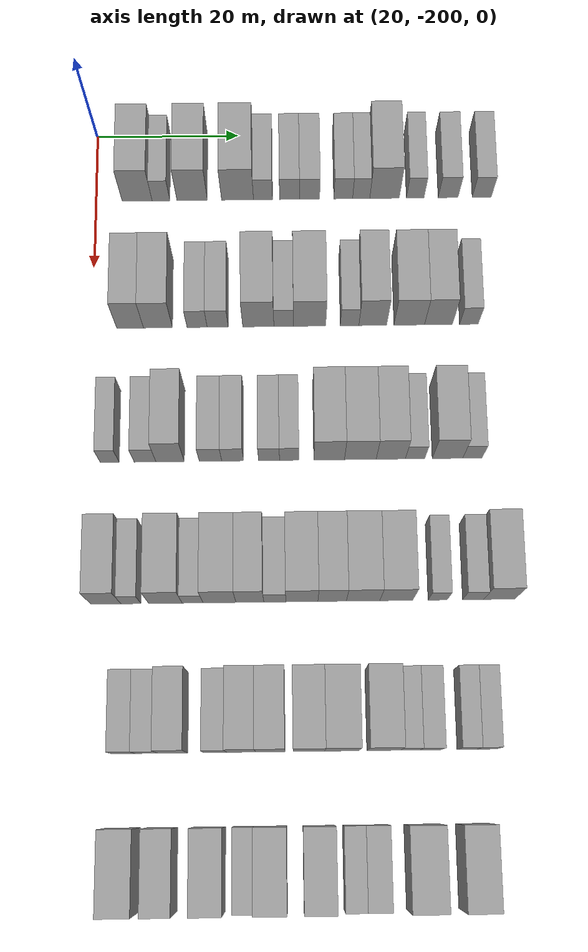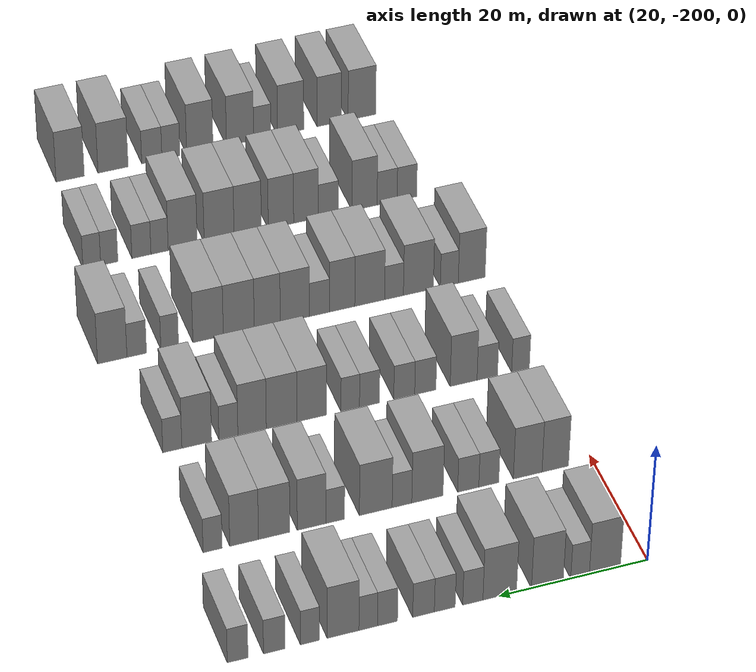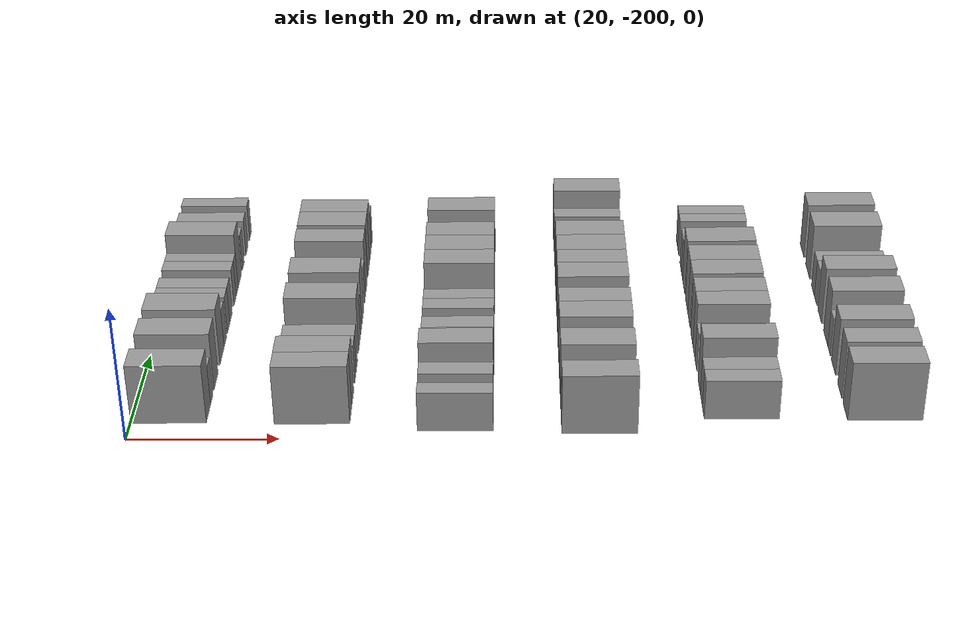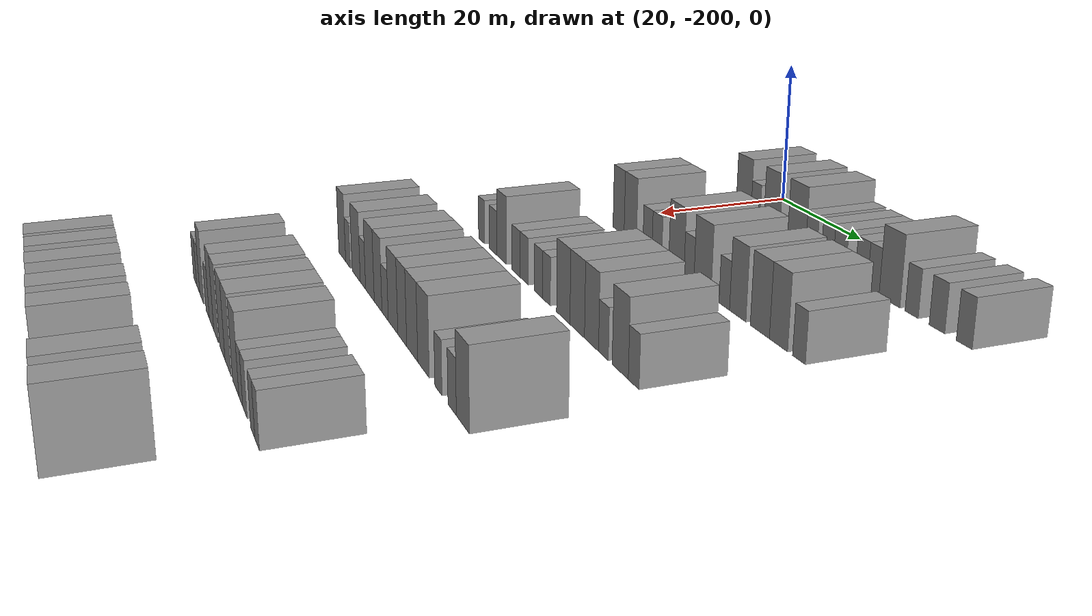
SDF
<sdf version="1.6">
 <world name="default">
  <model name="building_37">
   <static>1</static>
   <pose>25.0000 -194.2032 0 0.000000 0.000000 0.000000</pose>
   <link name="link">
    <pose>0 0 4.50 0 0 0</pose>
    <collision name="collision"><geometry><box><size>10.0000 4.2087 9.0000</size></box></geometry></collision>
    <visual name="visual">
     <cast_shadows>0</cast_shadows>
     <geometry><box><size>10.0000 4.2087 9.0000</size></box></geometry>
     <material>
      <script>
       <uri>model://grey_wall/materials/scripts</uri>
       <uri>model://grey_wall/materials/textures</uri>
       <name>vrc/grey_wall</name>
      </script>
     </material>
    </visual>
   </link>
  </model>
  <model name="building_38">
   <static>1</static>
   <pose>25.0000 -190.8479 0 0.000000 0.000000 0.000000</pose>
   <link name="link">
    <pose>0 0 3.00 0 0 0</pose>
    <collision name="collision"><geometry><box><size>10.0000 2.5019 6.0000</size></box></geometry></collision>
    <visual name="visual">
     <cast_shadows>0</cast_shadows>
     <geometry><box><size>10.0000 2.5019 6.0000</size></box></geometry>
     <material>
      <script>
       <uri>model://grey_wall/materials/scripts</uri>
       <uri>model://grey_wall/materials/textures</uri>
       <name>vrc/grey_wall</name>
      </script>
     </material>
    </visual>
   </link>
  </model>
  <model name="building_39">
   <static>1</static>
   <pose>25.0000 -186.4623 0 0.000000 0.000000 0.000000</pose>
   <link name="link">
    <pose>0 0 4.50 0 0 0</pose>
    <collision name="collision"><geometry><box><size>10.0000 4.2692 9.0000</size></box></geometry></collision>
    <visual name="visual">
     <cast_shadows>0</cast_shadows>
     <geometry><box><size>10.0000 4.2692 9.0000</size></box></geometry>
     <material>
      <script>
       <uri>model://grey_wall/materials/scripts</uri>
       <uri>model://grey_wall/materials/textures</uri>
       <name>vrc/grey_wall</name>
      </script>
     </material>
    </visual>
   </link>
  </model>
  <model name="building_40">
   <static>1</static>
   <pose>25.0000 -180.0829 0 0.000000 0.000000 0.000000</pose>
   <link name="link">
    <pose>0 0 4.50 0 0 0</pose>
    <collision name="collision"><geometry><box><size>10.0000 4.4897 9.0000</size></box></geometry></collision>
    <visual name="visual">
     <cast_shadows>0</cast_shadows>
     <geometry><box><size>10.0000 4.4897 9.0000</size></box></geometry>
     <material>
      <script>
       <uri>model://grey_wall/materials/scripts</uri>
       <uri>model://grey_wall/materials/textures</uri>
       <name>vrc/grey_wall</name>
      </script>
     </material>
    </visual>
   </link>
  </model>
  <model name="building_41">
   <static>1</static>
   <pose>25.0000 -176.4945 0 0.000000 0.000000 0.000000</pose>
   <link name="link">
    <pose>0 0 3.00 0 0 0</pose>
    <collision name="collision"><geometry><box><size>10.0000 2.6871 6.0000</size></box></geometry></collision>
    <visual name="visual">
     <cast_shadows>0</cast_shadows>
     <geometry><box><size>10.0000 2.6871 6.0000</size></box></geometry>
     <material>
      <script>
       <uri>model://grey_wall/materials/scripts</uri>
       <uri>model://grey_wall/materials/textures</uri>
       <name>vrc/grey_wall</name>
      </script>
     </material>
    </visual>
   </link>
  </model>
  <model name="building_42">
   <static>1</static>
   <pose>25.0000 -172.7683 0 0.000000 0.000000 0.000000</pose>
   <link name="link">
    <pose>0 0 3.00 0 0 0</pose>
    <collision name="collision"><geometry><box><size>10.0000 2.7653 6.0000</size></box></geometry></collision>
    <visual name="visual">
     <cast_shadows>0</cast_shadows>
     <geometry><box><size>10.0000 2.7653 6.0000</size></box></geometry>
     <material>
      <script>
       <uri>model://grey_wall/materials/scripts</uri>
       <uri>model://grey_wall/materials/textures</uri>
       <name>vrc/grey_wall</name>
      </script>
     </material>
    </visual>
   </link>
  </model>
  <model name="building_43">
   <static>1</static>
   <pose>25.0000 -169.9595 0 0.000000 0.000000 0.000000</pose>
   <link name="link">
    <pose>0 0 3.00 0 0 0</pose>
    <collision name="collision"><geometry><box><size>10.0000 2.8523 6.0000</size></box></geometry></collision>
    <visual name="visual">
     <cast_shadows>0</cast_shadows>
     <geometry><box><size>10.0000 2.8523 6.0000</size></box></geometry>
     <material>
      <script>
       <uri>model://grey_wall/materials/scripts</uri>
       <uri>model://grey_wall/materials/textures</uri>
       <name>vrc/grey_wall</name>
      </script>
     </material>
    </visual>
   </link>
  </model>
  <model name="building_44">
   <static>1</static>
   <pose>25.0000 -165.2083 0 0.000000 0.000000 0.000000</pose>
   <link name="link">
    <pose>0 0 3.00 0 0 0</pose>
    <collision name="collision"><geometry><box><size>10.0000 2.6502 6.0000</size></box></geometry></collision>
    <visual name="visual">
     <cast_shadows>0</cast_shadows>
     <geometry><box><size>10.0000 2.6502 6.0000</size></box></geometry>
     <material>
      <script>
       <uri>model://grey_wall/materials/scripts</uri>
       <uri>model://grey_wall/materials/textures</uri>
       <name>vrc/grey_wall</name>
      </script>
     </material>
    </visual>
   </link>
  </model>
  <model name="building_45">
   <static>1</static>
   <pose>25.0000 -162.6723 0 0.000000 0.000000 0.000000</pose>
   <link name="link">
    <pose>0 0 3.00 0 0 0</pose>
    <collision name="collision"><geometry><box><size>10.0000 2.4218 6.0000</size></box></geometry></collision>
    <visual name="visual">
     <cast_shadows>0</cast_shadows>
     <geometry><box><size>10.0000 2.4218 6.0000</size></box></geometry>
     <material>
      <script>
       <uri>model://grey_wall/materials/scripts</uri>
       <uri>model://grey_wall/materials/textures</uri>
       <name>vrc/grey_wall</name>
      </script>
     </material>
    </visual>
   </link>
  </model>
  <model name="building_46">
   <static>1</static>
   <pose>25.0000 -159.3870 0 0.000000 0.000000 0.000000</pose>
   <link name="link">
    <pose>0 0 4.50 0 0 0</pose>
    <collision name="collision"><geometry><box><size>10.0000 4.1486 9.0000</size></box></geometry></collision>
    <visual name="visual">
     <cast_shadows>0</cast_shadows>
     <geometry><box><size>10.0000 4.1486 9.0000</size></box></geometry>
     <material>
      <script>
       <uri>model://grey_wall/materials/scripts</uri>
       <uri>model://grey_wall/materials/textures</uri>
       <name>vrc/grey_wall</name>
      </script>
     </material>
    </visual>
   </link>
  </model>
  <model name="building_47">
   <static>1</static>
   <pose>25.0000 -155.0709 0 0.000000 0.000000 0.000000</pose>
   <link name="link">
    <pose>0 0 3.00 0 0 0</pose>
    <collision name="collision"><geometry><box><size>10.0000 2.4835 6.0000</size></box></geometry></collision>
    <visual name="visual">
     <cast_shadows>0</cast_shadows>
     <geometry><box><size>10.0000 2.4835 6.0000</size></box></geometry>
     <material>
      <script>
       <uri>model://grey_wall/materials/scripts</uri>
       <uri>model://grey_wall/materials/textures</uri>
       <name>vrc/grey_wall</name>
      </script>
     </material>
    </visual>
   </link>
  </model>
  <model name="building_48">
   <static>1</static>
   <pose>25.0000 -150.4321 0 0.000000 0.000000 0.000000</pose>
   <link name="link">
    <pose>0 0 3.00 0 0 0</pose>
    <collision name="collision"><geometry><box><size>10.0000 2.7941 6.0000</size></box></geometry></collision>
    <visual name="visual">
     <cast_shadows>0</cast_shadows>
     <geometry><box><size>10.0000 2.7941 6.0000</size></box></geometry>
     <material>
      <script>
       <uri>model://grey_wall/materials/scripts</uri>
       <uri>model://grey_wall/materials/textures</uri>
       <name>vrc/grey_wall</name>
      </script>
     </material>
    </visual>
   </link>
  </model>
  <model name="building_49">
   <static>1</static>
   <pose>25.0000 -145.6958 0 0.000000 0.000000 0.000000</pose>
   <link name="link">
    <pose>0 0 3.00 0 0 0</pose>
    <collision name="collision"><geometry><box><size>10.0000 2.6785 6.0000</size></box></geometry></collision>
    <visual name="visual">
     <cast_shadows>0</cast_shadows>
     <geometry><box><size>10.0000 2.6785 6.0000</size></box></geometry>
     <material>
      <script>
       <uri>model://grey_wall/materials/scripts</uri>
       <uri>model://grey_wall/materials/textures</uri>
       <name>vrc/grey_wall</name>
      </script>
     </material>
    </visual>
   </link>
  </model>
  <model name="building_208">
   <static>1</static>
   <pose>44.0000 -194.8047 0 0.000000 0.000000 0.000000</pose>
   <link name="link">
    <pose>0 0 4.50 0 0 0</pose>
    <collision name="collision"><geometry><box><size>10.0000 3.6692 9.0000</size></box></geometry></collision>
    <visual name="visual">
     <cast_shadows>0</cast_shadows>
     <geometry><box><size>10.0000 3.6692 9.0000</size></box></geometry>
     <material>
      <script>
       <uri>model://grey_wall/materials/scripts</uri>
       <uri>model://grey_wall/materials/textures</uri>
       <name>vrc/grey_wall</name>
      </script>
     </material>
    </visual>
   </link>
  </model>
  <model name="building_209">
   <static>1</static>
   <pose>44.0000 -190.9910 0 0.000000 0.000000 0.000000</pose>
   <link name="link">
    <pose>0 0 4.50 0 0 0</pose>
    <collision name="collision"><geometry><box><size>10.0000 3.9582 9.0000</size></box></geometry></collision>
    <visual name="visual">
     <cast_shadows>0</cast_shadows>
     <geometry><box><size>10.0000 3.9582 9.0000</size></box></geometry>
     <material>
      <script>
       <uri>model://grey_wall/materials/scripts</uri>
       <uri>model://grey_wall/materials/textures</uri>
       <name>vrc/grey_wall</name>
      </script>
     </material>
    </visual>
   </link>
  </model>
  <model name="building_210">
   <static>1</static>
   <pose>44.0000 -185.6369 0 0.000000 0.000000 0.000000</pose>
   <link name="link">
    <pose>0 0 3.00 0 0 0</pose>
    <collision name="collision"><geometry><box><size>10.0000 2.7499 6.0000</size></box></geometry></collision>
    <visual name="visual">
     <cast_shadows>0</cast_shadows>
     <geometry><box><size>10.0000 2.7499 6.0000</size></box></geometry>
     <material>
      <script>
       <uri>model://grey_wall/materials/scripts</uri>
       <uri>model://grey_wall/materials/textures</uri>
       <name>vrc/grey_wall</name>
      </script>
     </material>
    </visual>
   </link>
  </model>
  <model name="building_211">
   <static>1</static>
   <pose>44.0000 -182.8170 0 0.000000 0.000000 0.000000</pose>
   <link name="link">
    <pose>0 0 3.00 0 0 0</pose>
    <collision name="collision"><geometry><box><size>10.0000 2.8900 6.0000</size></box></geometry></collision>
    <visual name="visual">
     <cast_shadows>0</cast_shadows>
     <geometry><box><size>10.0000 2.8900 6.0000</size></box></geometry>
     <material>
      <script>
       <uri>model://grey_wall/materials/scripts</uri>
       <uri>model://grey_wall/materials/textures</uri>
       <name>vrc/grey_wall</name>
      </script>
     </material>
    </visual>
   </link>
  </model>
  <model name="building_212">
   <static>1</static>
   <pose>44.0000 -177.2403 0 0.000000 0.000000 0.000000</pose>
   <link name="link">
    <pose>0 0 4.50 0 0 0</pose>
    <collision name="collision"><geometry><box><size>10.0000 4.2633 9.0000</size></box></geometry></collision>
    <visual name="visual">
     <cast_shadows>0</cast_shadows>
     <geometry><box><size>10.0000 4.2633 9.0000</size></box></geometry>
     <material>
      <script>
       <uri>model://grey_wall/materials/scripts</uri>
       <uri>model://grey_wall/materials/textures</uri>
       <name>vrc/grey_wall</name>
      </script>
     </material>
    </visual>
   </link>
  </model>
  <model name="building_213">
   <static>1</static>
   <pose>44.0000 -173.7747 0 0.000000 0.000000 0.000000</pose>
   <link name="link">
    <pose>0 0 3.00 0 0 0</pose>
    <collision name="collision"><geometry><box><size>10.0000 2.6679 6.0000</size></box></geometry></collision>
    <visual name="visual">
     <cast_shadows>0</cast_shadows>
     <geometry><box><size>10.0000 2.6679 6.0000</size></box></geometry>
     <material>
      <script>
       <uri>model://grey_wall/materials/scripts</uri>
       <uri>model://grey_wall/materials/textures</uri>
       <name>vrc/grey_wall</name>
      </script>
     </material>
    </visual>
   </link>
  </model>
  <model name="building_214">
   <static>1</static>
   <pose>44.0000 -170.2261 0 0.000000 0.000000 0.000000</pose>
   <link name="link">
    <pose>0 0 4.50 0 0 0</pose>
    <collision name="collision"><geometry><box><size>10.0000 4.4292 9.0000</size></box></geometry></collision>
    <visual name="visual">
     <cast_shadows>0</cast_shadows>
     <geometry><box><size>10.0000 4.4292 9.0000</size></box></geometry>
     <material>
      <script>
       <uri>model://grey_wall/materials/scripts</uri>
       <uri>model://grey_wall/materials/textures</uri>
       <name>vrc/grey_wall</name>
      </script>
     </material>
    </visual>
   </link>
  </model>
  <model name="building_215">
   <static>1</static>
   <pose>44.0000 -164.7394 0 0.000000 0.000000 0.000000</pose>
   <link name="link">
    <pose>0 0 3.00 0 0 0</pose>
    <collision name="collision"><geometry><box><size>10.0000 2.5443 6.0000</size></box></geometry></collision>
    <visual name="visual">
     <cast_shadows>0</cast_shadows>
     <geometry><box><size>10.0000 2.5443 6.0000</size></box></geometry>
     <material>
      <script>
       <uri>model://grey_wall/materials/scripts</uri>
       <uri>model://grey_wall/materials/textures</uri>
       <name>vrc/grey_wall</name>
      </script>
     </material>
    </visual>
   </link>
  </model>
  <model name="building_216">
   <static>1</static>
   <pose>44.0000 -161.5590 0 0.000000 0.000000 0.000000</pose>
   <link name="link">
    <pose>0 0 4.50 0 0 0</pose>
    <collision name="collision"><geometry><box><size>10.0000 3.8164 9.0000</size></box></geometry></collision>
    <visual name="visual">
     <cast_shadows>0</cast_shadows>
     <geometry><box><size>10.0000 3.8164 9.0000</size></box></geometry>
     <material>
      <script>
       <uri>model://grey_wall/materials/scripts</uri>
       <uri>model://grey_wall/materials/textures</uri>
       <name>vrc/grey_wall</name>
      </script>
     </material>
    </visual>
   </link>
  </model>
  <model name="building_217">
   <static>1</static>
   <pose>44.0000 -156.5576 0 0.000000 0.000000 0.000000</pose>
   <link name="link">
    <pose>0 0 4.50 0 0 0</pose>
    <collision name="collision"><geometry><box><size>10.0000 4.1865 9.0000</size></box></geometry></collision>
    <visual name="visual">
     <cast_shadows>0</cast_shadows>
     <geometry><box><size>10.0000 4.1865 9.0000</size></box></geometry>
     <material>
      <script>
       <uri>model://grey_wall/materials/scripts</uri>
       <uri>model://grey_wall/materials/textures</uri>
       <name>vrc/grey_wall</name>
      </script>
     </material>
    </visual>
   </link>
  </model>
  <model name="building_218">
   <static>1</static>
   <pose>44.0000 -152.5551 0 0.000000 0.000000 0.000000</pose>
   <link name="link">
    <pose>0 0 4.50 0 0 0</pose>
    <collision name="collision"><geometry><box><size>10.0000 3.8185 9.0000</size></box></geometry></collision>
    <visual name="visual">
     <cast_shadows>0</cast_shadows>
     <geometry><box><size>10.0000 3.8185 9.0000</size></box></geometry>
     <material>
      <script>
       <uri>model://grey_wall/materials/scripts</uri>
       <uri>model://grey_wall/materials/textures</uri>
       <name>vrc/grey_wall</name>
      </script>
     </material>
    </visual>
   </link>
  </model>
  <model name="building_219">
   <static>1</static>
   <pose>44.0000 -148.3747 0 0.000000 0.000000 0.000000</pose>
   <link name="link">
    <pose>0 0 3.00 0 0 0</pose>
    <collision name="collision"><geometry><box><size>10.0000 2.5425 6.0000</size></box></geometry></collision>
    <visual name="visual">
     <cast_shadows>0</cast_shadows>
     <geometry><box><size>10.0000 2.5425 6.0000</size></box></geometry>
     <material>
      <script>
       <uri>model://grey_wall/materials/scripts</uri>
       <uri>model://grey_wall/materials/textures</uri>
       <name>vrc/grey_wall</name>
      </script>
     </material>
    </visual>
   </link>
  </model>
  <model name="building_387">
   <static>1</static>
   <pose>63.0000 -197.1488 0 0.000000 0.000000 0.000000</pose>
   <link name="link">
    <pose>0 0 3.00 0 0 0</pose>
    <collision name="collision"><geometry><box><size>10.0000 2.5104 6.0000</size></box></geometry></collision>
    <visual name="visual">
     <cast_shadows>0</cast_shadows>
     <geometry><box><size>10.0000 2.5104 6.0000</size></box></geometry>
     <material>
      <script>
       <uri>model://grey_wall/materials/scripts</uri>
       <uri>model://grey_wall/materials/textures</uri>
       <name>vrc/grey_wall</name>
      </script>
     </material>
    </visual>
   </link>
  </model>
  <model name="building_388">
   <static>1</static>
   <pose>63.0000 -192.4408 0 0.000000 0.000000 0.000000</pose>
   <link name="link">
    <pose>0 0 3.00 0 0 0</pose>
    <collision name="collision"><geometry><box><size>10.0000 2.9055 6.0000</size></box></geometry></collision>
    <visual name="visual">
     <cast_shadows>0</cast_shadows>
     <geometry><box><size>10.0000 2.9055 6.0000</size></box></geometry>
     <material>
      <script>
       <uri>model://grey_wall/materials/scripts</uri>
       <uri>model://grey_wall/materials/textures</uri>
       <name>vrc/grey_wall</name>
      </script>
     </material>
    </visual>
   </link>
  </model>
  <model name="building_389">
   <static>1</static>
   <pose>63.0000 -189.0952 0 0.000000 0.000000 0.000000</pose>
   <link name="link">
    <pose>0 0 4.50 0 0 0</pose>
    <collision name="collision"><geometry><box><size>10.0000 3.7857 9.0000</size></box></geometry></collision>
    <visual name="visual">
     <cast_shadows>0</cast_shadows>
     <geometry><box><size>10.0000 3.7857 9.0000</size></box></geometry>
     <material>
      <script>
       <uri>model://grey_wall/materials/scripts</uri>
       <uri>model://grey_wall/materials/textures</uri>
       <name>vrc/grey_wall</name>
      </script>
     </material>
    </visual>
   </link>
  </model>
  <model name="building_390">
   <static>1</static>
   <pose>63.0000 -183.7101 0 0.000000 0.000000 0.000000</pose>
   <link name="link">
    <pose>0 0 3.00 0 0 0</pose>
    <collision name="collision"><geometry><box><size>10.0000 2.9845 6.0000</size></box></geometry></collision>
    <visual name="visual">
     <cast_shadows>0</cast_shadows>
     <geometry><box><size>10.0000 2.9845 6.0000</size></box></geometry>
     <material>
      <script>
       <uri>model://grey_wall/materials/scripts</uri>
       <uri>model://grey_wall/materials/textures</uri>
       <name>vrc/grey_wall</name>
      </script>
     </material>
    </visual>
   </link>
  </model>
  <model name="building_391">
   <static>1</static>
   <pose>63.0000 -180.7538 0 0.000000 0.000000 0.000000</pose>
   <link name="link">
    <pose>0 0 3.00 0 0 0</pose>
    <collision name="collision"><geometry><box><size>10.0000 2.9281 6.0000</size></box></geometry></collision>
    <visual name="visual">
     <cast_shadows>0</cast_shadows>
     <geometry><box><size>10.0000 2.9281 6.0000</size></box></geometry>
     <material>
      <script>
       <uri>model://grey_wall/materials/scripts</uri>
       <uri>model://grey_wall/materials/textures</uri>
       <name>vrc/grey_wall</name>
      </script>
     </material>
    </visual>
   </link>
  </model>
  <model name="building_392">
   <static>1</static>
   <pose>63.0000 -175.8990 0 0.000000 0.000000 0.000000</pose>
   <link name="link">
    <pose>0 0 3.00 0 0 0</pose>
    <collision name="collision"><geometry><box><size>10.0000 2.7815 6.0000</size></box></geometry></collision>
    <visual name="visual">
     <cast_shadows>0</cast_shadows>
     <geometry><box><size>10.0000 2.7815 6.0000</size></box></geometry>
     <material>
      <script>
       <uri>model://grey_wall/materials/scripts</uri>
       <uri>model://grey_wall/materials/textures</uri>
       <name>vrc/grey_wall</name>
      </script>
     </material>
    </visual>
   </link>
  </model>
  <model name="building_393">
   <static>1</static>
   <pose>63.0000 -173.2251 0 0.000000 0.000000 0.000000</pose>
   <link name="link">
    <pose>0 0 3.00 0 0 0</pose>
    <collision name="collision"><geometry><box><size>10.0000 2.5663 6.0000</size></box></geometry></collision>
    <visual name="visual">
     <cast_shadows>0</cast_shadows>
     <geometry><box><size>10.0000 2.5663 6.0000</size></box></geometry>
     <material>
      <script>
       <uri>model://grey_wall/materials/scripts</uri>
       <uri>model://grey_wall/materials/textures</uri>
       <name>vrc/grey_wall</name>
      </script>
     </material>
    </visual>
   </link>
  </model>
  <model name="building_394">
   <static>1</static>
   <pose>63.0000 -167.9006 0 0.000000 0.000000 0.000000</pose>
   <link name="link">
    <pose>0 0 4.50 0 0 0</pose>
    <collision name="collision"><geometry><box><size>10.0000 4.0827 9.0000</size></box></geometry></collision>
    <visual name="visual">
     <cast_shadows>0</cast_shadows>
     <geometry><box><size>10.0000 4.0827 9.0000</size></box></geometry>
     <material>
      <script>
       <uri>model://grey_wall/materials/scripts</uri>
       <uri>model://grey_wall/materials/textures</uri>
       <name>vrc/grey_wall</name>
      </script>
     </material>
    </visual>
   </link>
  </model>
  <model name="building_395">
   <static>1</static>
   <pose>63.0000 -163.7403 0 0.000000 0.000000 0.000000</pose>
   <link name="link">
    <pose>0 0 4.50 0 0 0</pose>
    <collision name="collision"><geometry><box><size>10.0000 4.2379 9.0000</size></box></geometry></collision>
    <visual name="visual">
     <cast_shadows>0</cast_shadows>
     <geometry><box><size>10.0000 4.2379 9.0000</size></box></geometry>
     <material>
      <script>
       <uri>model://grey_wall/materials/scripts</uri>
       <uri>model://grey_wall/materials/textures</uri>
       <name>vrc/grey_wall</name>
      </script>
     </material>
    </visual>
   </link>
  </model>
  <model name="building_396">
   <static>1</static>
   <pose>63.0000 -159.6708 0 0.000000 0.000000 0.000000</pose>
   <link name="link">
    <pose>0 0 4.50 0 0 0</pose>
    <collision name="collision"><geometry><box><size>10.0000 3.9012 9.0000</size></box></geometry></collision>
    <visual name="visual">
     <cast_shadows>0</cast_shadows>
     <geometry><box><size>10.0000 3.9012 9.0000</size></box></geometry>
     <material>
      <script>
       <uri>model://grey_wall/materials/scripts</uri>
       <uri>model://grey_wall/materials/textures</uri>
       <name>vrc/grey_wall</name>
      </script>
     </material>
    </visual>
   </link>
  </model>
  <model name="building_397">
   <static>1</static>
   <pose>63.0000 -156.4261 0 0.000000 0.000000 0.000000</pose>
   <link name="link">
    <pose>0 0 3.00 0 0 0</pose>
    <collision name="collision"><geometry><box><size>10.0000 2.5882 6.0000</size></box></geometry></collision>
    <visual name="visual">
     <cast_shadows>0</cast_shadows>
     <geometry><box><size>10.0000 2.5882 6.0000</size></box></geometry>
     <material>
      <script>
       <uri>model://grey_wall/materials/scripts</uri>
       <uri>model://grey_wall/materials/textures</uri>
       <name>vrc/grey_wall</name>
      </script>
     </material>
    </visual>
   </link>
  </model>
  <model name="building_398">
   <static>1</static>
   <pose>63.0000 -152.1057 0 0.000000 0.000000 0.000000</pose>
   <link name="link">
    <pose>0 0 4.50 0 0 0</pose>
    <collision name="collision"><geometry><box><size>10.0000 4.0525 9.0000</size></box></geometry></collision>
    <visual name="visual">
     <cast_shadows>0</cast_shadows>
     <geometry><box><size>10.0000 4.0525 9.0000</size></box></geometry>
     <material>
      <script>
       <uri>model://grey_wall/materials/scripts</uri>
       <uri>model://grey_wall/materials/textures</uri>
       <name>vrc/grey_wall</name>
      </script>
     </material>
    </visual>
   </link>
  </model>
  <model name="building_399">
   <static>1</static>
   <pose>63.0000 -148.7836 0 0.000000 0.000000 0.000000</pose>
   <link name="link">
    <pose>0 0 3.00 0 0 0</pose>
    <collision name="collision"><geometry><box><size>10.0000 2.5918 6.0000</size></box></geometry></collision>
    <visual name="visual">
     <cast_shadows>0</cast_shadows>
     <geometry><box><size>10.0000 2.5918 6.0000</size></box></geometry>
     <material>
      <script>
       <uri>model://grey_wall/materials/scripts</uri>
       <uri>model://grey_wall/materials/textures</uri>
       <name>vrc/grey_wall</name>
      </script>
     </material>
    </visual>
   </link>
  </model>
  <model name="building_552">
   <static>1</static>
   <pose>82.0000 -197.1803 0 0.000000 0.000000 0.000000</pose>
   <link name="link">
    <pose>0 0 4.50 0 0 0</pose>
    <collision name="collision"><geometry><box><size>10.0000 3.9033 9.0000</size></box></geometry></collision>
    <visual name="visual">
     <cast_shadows>0</cast_shadows>
     <geometry><box><size>10.0000 3.9033 9.0000</size></box></geometry>
     <material>
      <script>
       <uri>model://grey_wall/materials/scripts</uri>
       <uri>model://grey_wall/materials/textures</uri>
       <name>vrc/grey_wall</name>
      </script>
     </material>
    </visual>
   </link>
  </model>
  <model name="building_553">
   <static>1</static>
   <pose>82.0000 -193.9284 0 0.000000 0.000000 0.000000</pose>
   <link name="link">
    <pose>0 0 3.00 0 0 0</pose>
    <collision name="collision"><geometry><box><size>10.0000 2.6006 6.0000</size></box></geometry></collision>
    <visual name="visual">
     <cast_shadows>0</cast_shadows>
     <geometry><box><size>10.0000 2.6006 6.0000</size></box></geometry>
     <material>
      <script>
       <uri>model://grey_wall/materials/scripts</uri>
       <uri>model://grey_wall/materials/textures</uri>
       <name>vrc/grey_wall</name>
      </script>
     </material>
    </visual>
   </link>
  </model>
  <model name="building_554">
   <static>1</static>
   <pose>82.0000 -189.4644 0 0.000000 0.000000 0.000000</pose>
   <link name="link">
    <pose>0 0 4.50 0 0 0</pose>
    <collision name="collision"><geometry><box><size>10.0000 4.3275 9.0000</size></box></geometry></collision>
    <visual name="visual">
     <cast_shadows>0</cast_shadows>
     <geometry><box><size>10.0000 4.3275 9.0000</size></box></geometry>
     <material>
      <script>
       <uri>model://grey_wall/materials/scripts</uri>
       <uri>model://grey_wall/materials/textures</uri>
       <name>vrc/grey_wall</name>
      </script>
     </material>
    </visual>
   </link>
  </model>
  <model name="building_555">
   <static>1</static>
   <pose>82.0000 -185.9500 0 0.000000 0.000000 0.000000</pose>
   <link name="link">
    <pose>0 0 3.00 0 0 0</pose>
    <collision name="collision"><geometry><box><size>10.0000 2.7013 6.0000</size></box></geometry></collision>
    <visual name="visual">
     <cast_shadows>0</cast_shadows>
     <geometry><box><size>10.0000 2.7013 6.0000</size></box></geometry>
     <material>
      <script>
       <uri>model://grey_wall/materials/scripts</uri>
       <uri>model://grey_wall/materials/textures</uri>
       <name>vrc/grey_wall</name>
      </script>
     </material>
    </visual>
   </link>
  </model>
  <model name="building_556">
   <static>1</static>
   <pose>82.0000 -182.4614 0 0.000000 0.000000 0.000000</pose>
   <link name="link">
    <pose>0 0 4.50 0 0 0</pose>
    <collision name="collision"><geometry><box><size>10.0000 4.2758 9.0000</size></box></geometry></collision>
    <visual name="visual">
     <cast_shadows>0</cast_shadows>
     <geometry><box><size>10.0000 4.2758 9.0000</size></box></geometry>
     <material>
      <script>
       <uri>model://grey_wall/materials/scripts</uri>
       <uri>model://grey_wall/materials/textures</uri>
       <name>vrc/grey_wall</name>
      </script>
     </material>
    </visual>
   </link>
  </model>
  <model name="building_557">
   <static>1</static>
   <pose>82.0000 -178.5161 0 0.000000 0.000000 0.000000</pose>
   <link name="link">
    <pose>0 0 4.50 0 0 0</pose>
    <collision name="collision"><geometry><box><size>10.0000 3.6148 9.0000</size></box></geometry></collision>
    <visual name="visual">
     <cast_shadows>0</cast_shadows>
     <geometry><box><size>10.0000 3.6148 9.0000</size></box></geometry>
     <material>
      <script>
       <uri>model://grey_wall/materials/scripts</uri>
       <uri>model://grey_wall/materials/textures</uri>
       <name>vrc/grey_wall</name>
      </script>
     </material>
    </visual>
   </link>
  </model>
  <model name="building_558">
   <static>1</static>
   <pose>82.0000 -175.2828 0 0.000000 0.000000 0.000000</pose>
   <link name="link">
    <pose>0 0 3.00 0 0 0</pose>
    <collision name="collision"><geometry><box><size>10.0000 2.8520 6.0000</size></box></geometry></collision>
    <visual name="visual">
     <cast_shadows>0</cast_shadows>
     <geometry><box><size>10.0000 2.8520 6.0000</size></box></geometry>
     <material>
      <script>
       <uri>model://grey_wall/materials/scripts</uri>
       <uri>model://grey_wall/materials/textures</uri>
       <name>vrc/grey_wall</name>
      </script>
     </material>
    </visual>
   </link>
  </model>
  <model name="building_559">
   <static>1</static>
   <pose>82.0000 -171.7832 0 0.000000 0.000000 0.000000</pose>
   <link name="link">
    <pose>0 0 4.50 0 0 0</pose>
    <collision name="collision"><geometry><box><size>10.0000 4.1472 9.0000</size></box></geometry></collision>
    <visual name="visual">
     <cast_shadows>0</cast_shadows>
     <geometry><box><size>10.0000 4.1472 9.0000</size></box></geometry>
     <material>
      <script>
       <uri>model://grey_wall/materials/scripts</uri>
       <uri>model://grey_wall/materials/textures</uri>
       <name>vrc/grey_wall</name>
      </script>
     </material>
    </visual>
   </link>
  </model>
  <model name="building_560">
   <static>1</static>
   <pose>82.0000 -167.8687 0 0.000000 0.000000 0.000000</pose>
   <link name="link">
    <pose>0 0 4.50 0 0 0</pose>
    <collision name="collision"><geometry><box><size>10.0000 3.6818 9.0000</size></box></geometry></collision>
    <visual name="visual">
     <cast_shadows>0</cast_shadows>
     <geometry><box><size>10.0000 3.6818 9.0000</size></box></geometry>
     <material>
      <script>
       <uri>model://grey_wall/materials/scripts</uri>
       <uri>model://grey_wall/materials/textures</uri>
       <name>vrc/grey_wall</name>
      </script>
     </material>
    </visual>
   </link>
  </model>
  <model name="building_561">
   <static>1</static>
   <pose>82.0000 -163.8502 0 0.000000 0.000000 0.000000</pose>
   <link name="link">
    <pose>0 0 4.50 0 0 0</pose>
    <collision name="collision"><geometry><box><size>10.0000 4.3551 9.0000</size></box></geometry></collision>
    <visual name="visual">
     <cast_shadows>0</cast_shadows>
     <geometry><box><size>10.0000 4.3551 9.0000</size></box></geometry>
     <material>
      <script>
       <uri>model://grey_wall/materials/scripts</uri>
       <uri>model://grey_wall/materials/textures</uri>
       <name>vrc/grey_wall</name>
      </script>
     </material>
    </visual>
   </link>
  </model>
  <model name="building_562">
   <static>1</static>
   <pose>82.0000 -159.5356 0 0.000000 0.000000 0.000000</pose>
   <link name="link">
    <pose>0 0 4.50 0 0 0</pose>
    <collision name="collision"><geometry><box><size>10.0000 4.2741 9.0000</size></box></geometry></collision>
    <visual name="visual">
     <cast_shadows>0</cast_shadows>
     <geometry><box><size>10.0000 4.2741 9.0000</size></box></geometry>
     <material>
      <script>
       <uri>model://grey_wall/materials/scripts</uri>
       <uri>model://grey_wall/materials/textures</uri>
       <name>vrc/grey_wall</name>
      </script>
     </material>
    </visual>
   </link>
  </model>
  <model name="building_563">
   <static>1</static>
   <pose>82.0000 -154.1586 0 0.000000 0.000000 0.000000</pose>
   <link name="link">
    <pose>0 0 3.00 0 0 0</pose>
    <collision name="collision"><geometry><box><size>10.0000 2.4799 6.0000</size></box></geometry></collision>
    <visual name="visual">
     <cast_shadows>0</cast_shadows>
     <geometry><box><size>10.0000 2.4799 6.0000</size></box></geometry>
     <material>
      <script>
       <uri>model://grey_wall/materials/scripts</uri>
       <uri>model://grey_wall/materials/textures</uri>
       <name>vrc/grey_wall</name>
      </script>
     </material>
    </visual>
   </link>
  </model>
  <model name="building_564">
   <static>1</static>
   <pose>82.0000 -149.5549 0 0.000000 0.000000 0.000000</pose>
   <link name="link">
    <pose>0 0 3.00 0 0 0</pose>
    <collision name="collision"><geometry><box><size>10.0000 2.7276 6.0000</size></box></geometry></collision>
    <visual name="visual">
     <cast_shadows>0</cast_shadows>
     <geometry><box><size>10.0000 2.7276 6.0000</size></box></geometry>
     <material>
      <script>
       <uri>model://grey_wall/materials/scripts</uri>
       <uri>model://grey_wall/materials/textures</uri>
       <name>vrc/grey_wall</name>
      </script>
     </material>
    </visual>
   </link>
  </model>
  <model name="building_565">
   <static>1</static>
   <pose>82.0000 -146.1520 0 0.000000 0.000000 0.000000</pose>
   <link name="link">
    <pose>0 0 4.50 0 0 0</pose>
    <collision name="collision"><geometry><box><size>10.0000 4.0783 9.0000</size></box></geometry></collision>
    <visual name="visual">
     <cast_shadows>0</cast_shadows>
     <geometry><box><size>10.0000 4.0783 9.0000</size></box></geometry>
     <material>
      <script>
       <uri>model://grey_wall/materials/scripts</uri>
       <uri>model://grey_wall/materials/textures</uri>
       <name>vrc/grey_wall</name>
      </script>
     </material>
    </visual>
   </link>
  </model>
  <model name="building_726">
   <static>1</static>
   <pose>101.0000 -194.4878 0 0.000000 0.000000 0.000000</pose>
   <link name="link">
    <pose>0 0 3.00 0 0 0</pose>
    <collision name="collision"><geometry><box><size>10.0000 2.8972 6.0000</size></box></geometry></collision>
    <visual name="visual">
     <cast_shadows>0</cast_shadows>
     <geometry><box><size>10.0000 2.8972 6.0000</size></box></geometry>
     <material>
      <script>
       <uri>model://grey_wall/materials/scripts</uri>
       <uri>model://grey_wall/materials/textures</uri>
       <name>vrc/grey_wall</name>
      </script>
     </material>
    </visual>
   </link>
  </model>
  <model name="building_727">
   <static>1</static>
   <pose>101.0000 -191.5587 0 0.000000 0.000000 0.000000</pose>
   <link name="link">
    <pose>0 0 3.00 0 0 0</pose>
    <collision name="collision"><geometry><box><size>10.0000 2.9610 6.0000</size></box></geometry></collision>
    <visual name="visual">
     <cast_shadows>0</cast_shadows>
     <geometry><box><size>10.0000 2.9610 6.0000</size></box></geometry>
     <material>
      <script>
       <uri>model://grey_wall/materials/scripts</uri>
       <uri>model://grey_wall/materials/textures</uri>
       <name>vrc/grey_wall</name>
      </script>
     </material>
    </visual>
   </link>
  </model>
  <model name="building_728">
   <static>1</static>
   <pose>101.0000 -188.2337 0 0.000000 0.000000 0.000000</pose>
   <link name="link">
    <pose>0 0 4.50 0 0 0</pose>
    <collision name="collision"><geometry><box><size>10.0000 3.6889 9.0000</size></box></geometry></collision>
    <visual name="visual">
     <cast_shadows>0</cast_shadows>
     <geometry><box><size>10.0000 3.6889 9.0000</size></box></geometry>
     <material>
      <script>
       <uri>model://grey_wall/materials/scripts</uri>
       <uri>model://grey_wall/materials/textures</uri>
       <name>vrc/grey_wall</name>
      </script>
     </material>
    </visual>
   </link>
  </model>
  <model name="building_729">
   <static>1</static>
   <pose>101.0000 -182.9278 0 0.000000 0.000000 0.000000</pose>
   <link name="link">
    <pose>0 0 3.00 0 0 0</pose>
    <collision name="collision"><geometry><box><size>10.0000 2.9229 6.0000</size></box></geometry></collision>
    <visual name="visual">
     <cast_shadows>0</cast_shadows>
     <geometry><box><size>10.0000 2.9229 6.0000</size></box></geometry>
     <material>
      <script>
       <uri>model://grey_wall/materials/scripts</uri>
       <uri>model://grey_wall/materials/textures</uri>
       <name>vrc/grey_wall</name>
      </script>
     </material>
    </visual>
   </link>
  </model>
  <model name="building_730">
   <static>1</static>
   <pose>101.0000 -179.6478 0 0.000000 0.000000 0.000000</pose>
   <link name="link">
    <pose>0 0 4.50 0 0 0</pose>
    <collision name="collision"><geometry><box><size>10.0000 3.6370 9.0000</size></box></geometry></collision>
    <visual name="visual">
     <cast_shadows>0</cast_shadows>
     <geometry><box><size>10.0000 3.6370 9.0000</size></box></geometry>
     <material>
      <script>
       <uri>model://grey_wall/materials/scripts</uri>
       <uri>model://grey_wall/materials/textures</uri>
       <name>vrc/grey_wall</name>
      </script>
     </material>
    </visual>
   </link>
  </model>
  <model name="building_731">
   <static>1</static>
   <pose>101.0000 -175.9796 0 0.000000 0.000000 0.000000</pose>
   <link name="link">
    <pose>0 0 4.50 0 0 0</pose>
    <collision name="collision"><geometry><box><size>10.0000 3.6995 9.0000</size></box></geometry></collision>
    <visual name="visual">
     <cast_shadows>0</cast_shadows>
     <geometry><box><size>10.0000 3.6995 9.0000</size></box></geometry>
     <material>
      <script>
       <uri>model://grey_wall/materials/scripts</uri>
       <uri>model://grey_wall/materials/textures</uri>
       <name>vrc/grey_wall</name>
      </script>
     </material>
    </visual>
   </link>
  </model>
  <model name="building_732">
   <static>1</static>
   <pose>101.0000 -171.1484 0 0.000000 0.000000 0.000000</pose>
   <link name="link">
    <pose>0 0 4.50 0 0 0</pose>
    <collision name="collision"><geometry><box><size>10.0000 3.9628 9.0000</size></box></geometry></collision>
    <visual name="visual">
     <cast_shadows>0</cast_shadows>
     <geometry><box><size>10.0000 3.9628 9.0000</size></box></geometry>
     <material>
      <script>
       <uri>model://grey_wall/materials/scripts</uri>
       <uri>model://grey_wall/materials/textures</uri>
       <name>vrc/grey_wall</name>
      </script>
     </material>
    </visual>
   </link>
  </model>
  <model name="building_733">
   <static>1</static>
   <pose>101.0000 -167.0055 0 0.000000 0.000000 0.000000</pose>
   <link name="link">
    <pose>0 0 4.50 0 0 0</pose>
    <collision name="collision"><geometry><box><size>10.0000 4.3230 9.0000</size></box></geometry></collision>
    <visual name="visual">
     <cast_shadows>0</cast_shadows>
     <geometry><box><size>10.0000 4.3230 9.0000</size></box></geometry>
     <material>
      <script>
       <uri>model://grey_wall/materials/scripts</uri>
       <uri>model://grey_wall/materials/textures</uri>
       <name>vrc/grey_wall</name>
      </script>
     </material>
    </visual>
   </link>
  </model>
  <model name="building_734">
   <static>1</static>
   <pose>101.0000 -161.7528 0 0.000000 0.000000 0.000000</pose>
   <link name="link">
    <pose>0 0 4.50 0 0 0</pose>
    <collision name="collision"><geometry><box><size>10.0000 4.1823 9.0000</size></box></geometry></collision>
    <visual name="visual">
     <cast_shadows>0</cast_shadows>
     <geometry><box><size>10.0000 4.1823 9.0000</size></box></geometry>
     <material>
      <script>
       <uri>model://grey_wall/materials/scripts</uri>
       <uri>model://grey_wall/materials/textures</uri>
       <name>vrc/grey_wall</name>
      </script>
     </material>
    </visual>
   </link>
  </model>
  <model name="building_735">
   <static>1</static>
   <pose>101.0000 -158.4237 0 0.000000 0.000000 0.000000</pose>
   <link name="link">
    <pose>0 0 3.00 0 0 0</pose>
    <collision name="collision"><geometry><box><size>10.0000 2.4758 6.0000</size></box></geometry></collision>
    <visual name="visual">
     <cast_shadows>0</cast_shadows>
     <geometry><box><size>10.0000 2.4758 6.0000</size></box></geometry>
     <material>
      <script>
       <uri>model://grey_wall/materials/scripts</uri>
       <uri>model://grey_wall/materials/textures</uri>
       <name>vrc/grey_wall</name>
      </script>
     </material>
    </visual>
   </link>
  </model>
  <model name="building_736">
   <static>1</static>
   <pose>101.0000 -155.8242 0 0.000000 0.000000 0.000000</pose>
   <link name="link">
    <pose>0 0 3.00 0 0 0</pose>
    <collision name="collision"><geometry><box><size>10.0000 2.7232 6.0000</size></box></geometry></collision>
    <visual name="visual">
     <cast_shadows>0</cast_shadows>
     <geometry><box><size>10.0000 2.7232 6.0000</size></box></geometry>
     <material>
      <script>
       <uri>model://grey_wall/materials/scripts</uri>
       <uri>model://grey_wall/materials/textures</uri>
       <name>vrc/grey_wall</name>
      </script>
     </material>
    </visual>
   </link>
  </model>
  <model name="building_737">
   <static>1</static>
   <pose>101.0000 -151.2335 0 0.000000 0.000000 0.000000</pose>
   <link name="link">
    <pose>0 0 3.00 0 0 0</pose>
    <collision name="collision"><geometry><box><size>10.0000 2.4583 6.0000</size></box></geometry></collision>
    <visual name="visual">
     <cast_shadows>0</cast_shadows>
     <geometry><box><size>10.0000 2.4583 6.0000</size></box></geometry>
     <material>
      <script>
       <uri>model://grey_wall/materials/scripts</uri>
       <uri>model://grey_wall/materials/textures</uri>
       <name>vrc/grey_wall</name>
      </script>
     </material>
    </visual>
   </link>
  </model>
  <model name="building_738">
   <static>1</static>
   <pose>101.0000 -148.7455 0 0.000000 0.000000 0.000000</pose>
   <link name="link">
    <pose>0 0 3.00 0 0 0</pose>
    <collision name="collision"><geometry><box><size>10.0000 2.5178 6.0000</size></box></geometry></collision>
    <visual name="visual">
     <cast_shadows>0</cast_shadows>
     <geometry><box><size>10.0000 2.5178 6.0000</size></box></geometry>
     <material>
      <script>
       <uri>model://grey_wall/materials/scripts</uri>
       <uri>model://grey_wall/materials/textures</uri>
       <name>vrc/grey_wall</name>
      </script>
     </material>
    </visual>
   </link>
  </model>
  <model name="building_906">
   <static>1</static>
   <pose>120.0000 -194.3421 0 0.000000 0.000000 0.000000</pose>
   <link name="link">
    <pose>0 0 4.50 0 0 0</pose>
    <collision name="collision"><geometry><box><size>10.0000 4.1755 9.0000</size></box></geometry></collision>
    <visual name="visual">
     <cast_shadows>0</cast_shadows>
     <geometry><box><size>10.0000 4.1755 9.0000</size></box></geometry>
     <material>
      <script>
       <uri>model://grey_wall/materials/scripts</uri>
       <uri>model://grey_wall/materials/textures</uri>
       <name>vrc/grey_wall</name>
      </script>
     </material>
    </visual>
   </link>
  </model>
  <model name="building_907">
   <static>1</static>
   <pose>120.0000 -189.4123 0 0.000000 0.000000 0.000000</pose>
   <link name="link">
    <pose>0 0 4.50 0 0 0</pose>
    <collision name="collision"><geometry><box><size>10.0000 3.6841 9.0000</size></box></geometry></collision>
    <visual name="visual">
     <cast_shadows>0</cast_shadows>
     <geometry><box><size>10.0000 3.6841 9.0000</size></box></geometry>
     <material>
      <script>
       <uri>model://grey_wall/materials/scripts</uri>
       <uri>model://grey_wall/materials/textures</uri>
       <name>vrc/grey_wall</name>
      </script>
     </material>
    </visual>
   </link>
  </model>
  <model name="building_908">
   <static>1</static>
   <pose>120.0000 -183.5998 0 0.000000 0.000000 0.000000</pose>
   <link name="link">
    <pose>0 0 4.50 0 0 0</pose>
    <collision name="collision"><geometry><box><size>10.0000 3.9409 9.0000</size></box></geometry></collision>
    <visual name="visual">
     <cast_shadows>0</cast_shadows>
     <geometry><box><size>10.0000 3.9409 9.0000</size></box></geometry>
     <material>
      <script>
       <uri>model://grey_wall/materials/scripts</uri>
       <uri>model://grey_wall/materials/textures</uri>
       <name>vrc/grey_wall</name>
      </script>
     </material>
    </visual>
   </link>
  </model>
  <model name="building_909">
   <static>1</static>
   <pose>120.0000 -179.3496 0 0.000000 0.000000 0.000000</pose>
   <link name="link">
    <pose>0 0 3.00 0 0 0</pose>
    <collision name="collision"><geometry><box><size>10.0000 2.5594 6.0000</size></box></geometry></collision>
    <visual name="visual">
     <cast_shadows>0</cast_shadows>
     <geometry><box><size>10.0000 2.5594 6.0000</size></box></geometry>
     <material>
      <script>
       <uri>model://grey_wall/materials/scripts</uri>
       <uri>model://grey_wall/materials/textures</uri>
       <name>vrc/grey_wall</name>
      </script>
     </material>
    </visual>
   </link>
  </model>
  <model name="building_910">
   <static>1</static>
   <pose>120.0000 -176.0481 0 0.000000 0.000000 0.000000</pose>
   <link name="link">
    <pose>0 0 4.50 0 0 0</pose>
    <collision name="collision"><geometry><box><size>10.0000 4.0437 9.0000</size></box></geometry></collision>
    <visual name="visual">
     <cast_shadows>0</cast_shadows>
     <geometry><box><size>10.0000 4.0437 9.0000</size></box></geometry>
     <material>
      <script>
       <uri>model://grey_wall/materials/scripts</uri>
       <uri>model://grey_wall/materials/textures</uri>
       <name>vrc/grey_wall</name>
      </script>
     </material>
    </visual>
   </link>
  </model>
  <model name="building_911">
   <static>1</static>
   <pose>120.0000 -170.0678 0 0.000000 0.000000 0.000000</pose>
   <link name="link">
    <pose>0 0 4.50 0 0 0</pose>
    <collision name="collision"><geometry><box><size>10.0000 3.9169 9.0000</size></box></geometry></collision>
    <visual name="visual">
     <cast_shadows>0</cast_shadows>
     <geometry><box><size>10.0000 3.9169 9.0000</size></box></geometry>
     <material>
      <script>
       <uri>model://grey_wall/materials/scripts</uri>
       <uri>model://grey_wall/materials/textures</uri>
       <name>vrc/grey_wall</name>
      </script>
     </material>
    </visual>
   </link>
  </model>
  <model name="building_912">
   <static>1</static>
   <pose>120.0000 -165.7822 0 0.000000 0.000000 0.000000</pose>
   <link name="link">
    <pose>0 0 3.00 0 0 0</pose>
    <collision name="collision"><geometry><box><size>10.0000 2.6544 6.0000</size></box></geometry></collision>
    <visual name="visual">
     <cast_shadows>0</cast_shadows>
     <geometry><box><size>10.0000 2.6544 6.0000</size></box></geometry>
     <material>
      <script>
       <uri>model://grey_wall/materials/scripts</uri>
       <uri>model://grey_wall/materials/textures</uri>
       <name>vrc/grey_wall</name>
      </script>
     </material>
    </visual>
   </link>
  </model>
  <model name="building_913">
   <static>1</static>
   <pose>120.0000 -162.9681 0 0.000000 0.000000 0.000000</pose>
   <link name="link">
    <pose>0 0 3.00 0 0 0</pose>
    <collision name="collision"><geometry><box><size>10.0000 2.9738 6.0000</size></box></geometry></collision>
    <visual name="visual">
     <cast_shadows>0</cast_shadows>
     <geometry><box><size>10.0000 2.9738 6.0000</size></box></geometry>
     <material>
      <script>
       <uri>model://grey_wall/materials/scripts</uri>
       <uri>model://grey_wall/materials/textures</uri>
       <name>vrc/grey_wall</name>
      </script>
     </material>
    </visual>
   </link>
  </model>
  <model name="building_914">
   <static>1</static>
   <pose>120.0000 -157.2712 0 0.000000 0.000000 0.000000</pose>
   <link name="link">
    <pose>0 0 4.50 0 0 0</pose>
    <collision name="collision"><geometry><box><size>10.0000 4.4199 9.0000</size></box></geometry></collision>
    <visual name="visual">
     <cast_shadows>0</cast_shadows>
     <geometry><box><size>10.0000 4.4199 9.0000</size></box></geometry>
     <material>
      <script>
       <uri>model://grey_wall/materials/scripts</uri>
       <uri>model://grey_wall/materials/textures</uri>
       <name>vrc/grey_wall</name>
      </script>
     </material>
    </visual>
   </link>
  </model>
  <model name="building_915">
   <static>1</static>
   <pose>120.0000 -151.0007 0 0.000000 0.000000 0.000000</pose>
   <link name="link">
    <pose>0 0 4.50 0 0 0</pose>
    <collision name="collision"><geometry><box><size>10.0000 4.1211 9.0000</size></box></geometry></collision>
    <visual name="visual">
     <cast_shadows>0</cast_shadows>
     <geometry><box><size>10.0000 4.1211 9.0000</size></box></geometry>
     <material>
      <script>
       <uri>model://grey_wall/materials/scripts</uri>
       <uri>model://grey_wall/materials/textures</uri>
       <name>vrc/grey_wall</name>
      </script>
     </material>
    </visual>
   </link>
  </model>
 </world>
</sdf>
